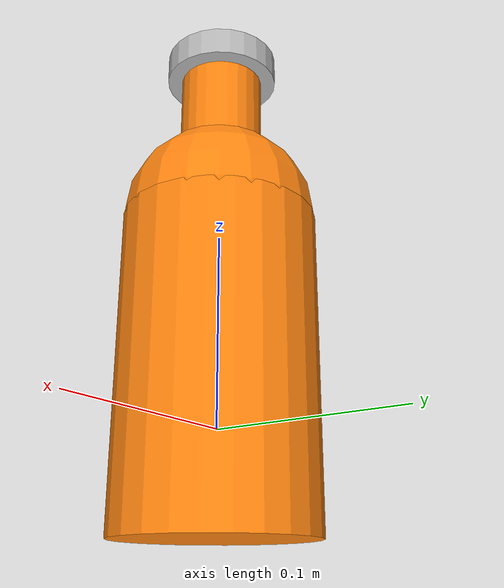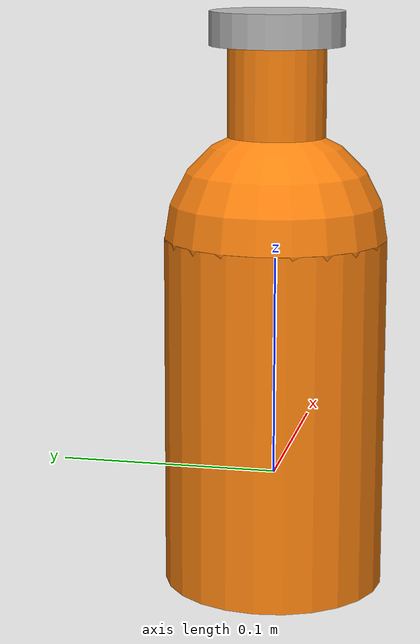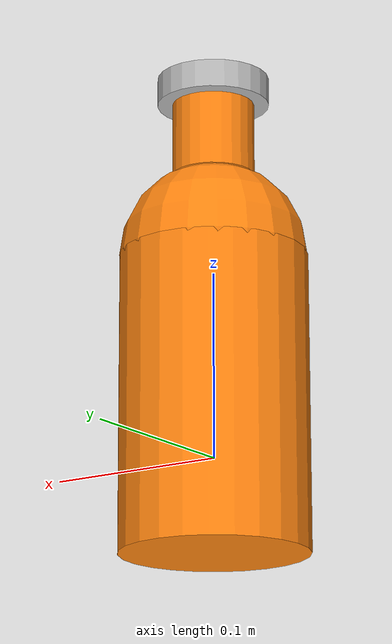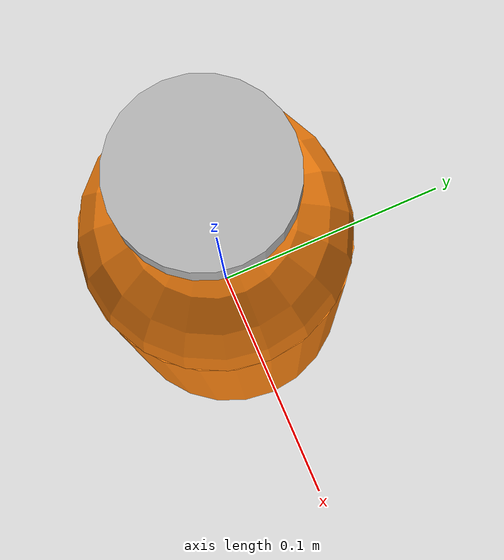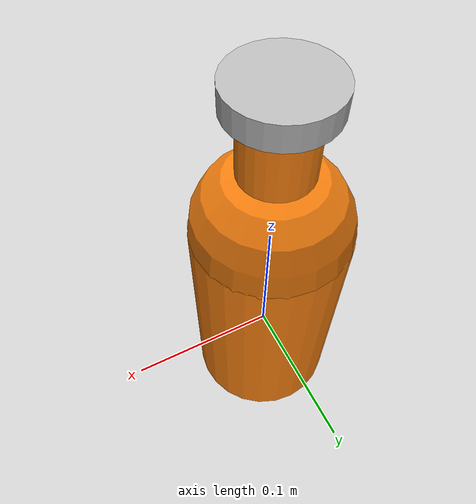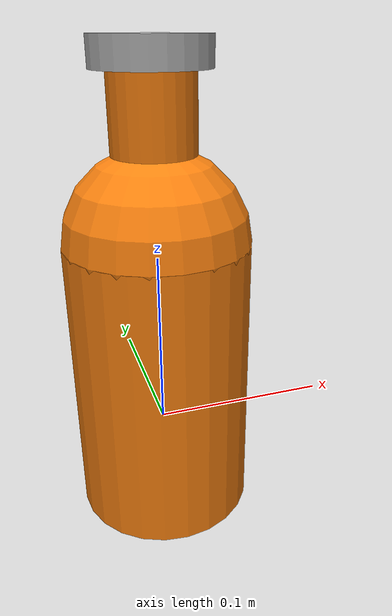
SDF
<?xml version="1.0"?>
<sdf version="1.7">
  <model name="pick_box">
    <static>false</static>

    <link name="box_link">
      <inertial>
        <pose>0 0 0.02 0 0 0</pose>
        <mass>0.25</mass>
        <inertia>
          <ixx>0.00100</ixx>
          <iyy>0.00100</iyy>
          <izz>0.00035</izz>
          <ixy>0</ixy>
          <ixz>0</ixz>
          <iyz>0</iyz>
        </inertia>
      </inertial>

      <!-- Main body: bottom=-0.05 m, top=+0.11 m. -->
      <collision name="body_collision">
        <pose>0 0 0.030 0 0 0</pose>
        <geometry>
          <cylinder>
            <radius>0.050</radius>
            <length>0.160</length>
          </cylinder>
        </geometry>
      </collision>

      <!-- The upper half of this sphere creates a rounded shoulder. -->
      <collision name="shoulder_collision">
        <pose>0 0 0.110 0 0 0</pose>
        <geometry>
          <sphere>
            <radius>0.050</radius>
          </sphere>
        </geometry>
      </collision>

      <collision name="neck_collision">
        <pose>0 0 0.175 0 0 0</pose>
        <geometry>
          <cylinder>
            <radius>0.022</radius>
            <length>0.040</length>
          </cylinder>
        </geometry>
      </collision>

      <collision name="lip_collision">
        <pose>0 0 0.2025 0 0 0</pose>
        <geometry>
          <cylinder>
            <radius>0.030</radius>
            <length>0.015</length>
          </cylinder>
        </geometry>
      </collision>

      <visual name="body_visual">
        <pose>0 0 0.030 0 0 0</pose>
        <geometry>
          <cylinder>
            <radius>0.050</radius>
            <length>0.160</length>
          </cylinder>
        </geometry>
        <material>
          <ambient>0.85 0.42 0.04 1</ambient>
          <diffuse>1.00 0.52 0.06 1</diffuse>
          <specular>0.20 0.15 0.05 1</specular>
        </material>
      </visual>

      <visual name="shoulder_visual">
        <pose>0 0 0.110 0 0 0</pose>
        <geometry>
          <sphere>
            <radius>0.050</radius>
          </sphere>
        </geometry>
        <material>
          <ambient>0.85 0.42 0.04 1</ambient>
          <diffuse>1.00 0.52 0.06 1</diffuse>
          <specular>0.20 0.15 0.05 1</specular>
        </material>
      </visual>

      <visual name="neck_visual">
        <pose>0 0 0.175 0 0 0</pose>
        <geometry>
          <cylinder>
            <radius>0.022</radius>
            <length>0.040</length>
          </cylinder>
        </geometry>
        <material>
          <ambient>0.85 0.42 0.04 1</ambient>
          <diffuse>1.00 0.52 0.06 1</diffuse>
          <specular>0.20 0.15 0.05 1</specular>
        </material>
      </visual>

      <visual name="lip_visual">
        <pose>0 0 0.2025 0 0 0</pose>
        <geometry>
          <cylinder>
            <radius>0.030</radius>
            <length>0.015</length>
          </cylinder>
        </geometry>
        <material>
          <ambient>0.55 0.55 0.55 1</ambient>
          <diffuse>0.72 0.72 0.72 1</diffuse>
          <specular>0.95 0.95 0.95 1</specular>
        </material>
      </visual>
    </link>
  </model>
</sdf>
